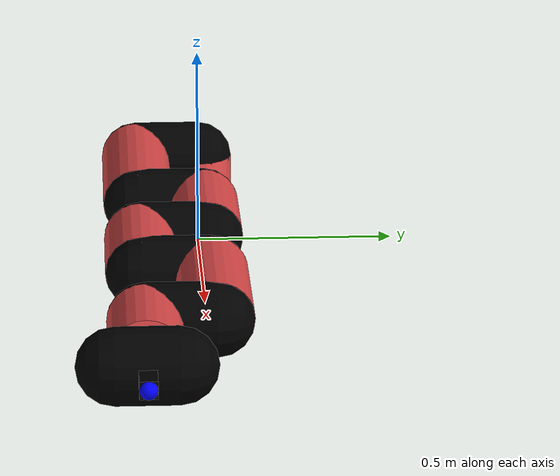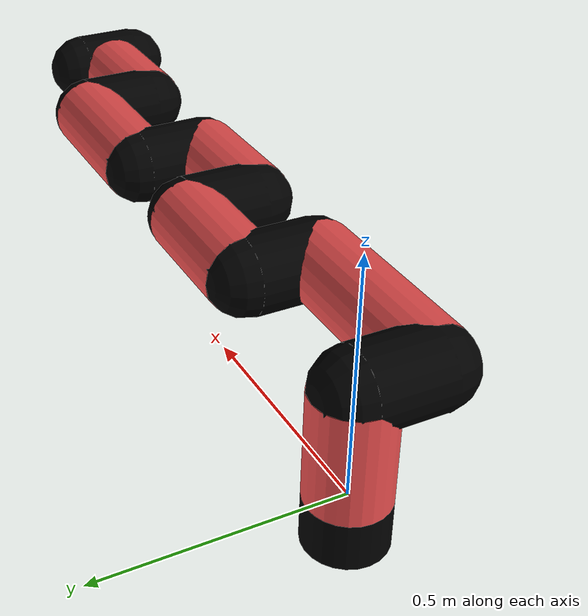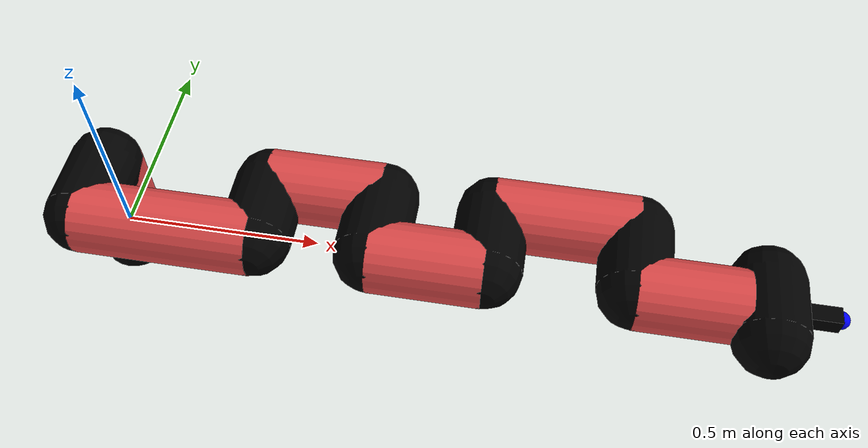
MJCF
<mujoco model="manipulator">
		<compiler angle="degree" coordinate="local" inertiafromgeom="auto" meshdir="meshes/"/>
		<option gravity="0 0 0" integrator="RK4" iterations="30" timestep="0.01"/>

		<default>
		<joint armature="1" limited="true" stiffness="10" damping="15" frictionloss="5.0"/>
		<geom conaffinity="1" condim="3" contype="1" friction=".5 .1 .1" margin="0.002"/>
		<motor ctrllimited="true"/>
		<position ctrllimited="true"/>
		</default>

		<asset>
		<texture builtin="gradient" height="100" rgb1="1.0 1.0 1.0" rgb2="1.0 1.0 1.0" type="skybox" width="100"/>
		<texture builtin="flat" height="32" name="arm_tex" rgb1="0.9 0.3 0.3" type="2d" width="32"/>
		<texture builtin="flat" height="32" name="gripper_tex" rgb1="0.0 0.0 0.0" type="cube" width="32"/>

		<material name="arm_mat" shininess="0.1" specular="0.1" texture="arm_tex"/>
		<material name="gripper_mat" shininess="1" specular="1" texture="gripper_tex"/>
		</asset>

		<worldbody>
		<light cutoff="45" diffuse=".8 .8 .8" dir="0 0.16 -1" directional="false" name="light" pos="0 -2.0 8.0" specular="0.3 0.3 0.3"/>

		<body name="base_link" pos="0 0 -0.1">
		<geom fromto="0 0 0 0 0 0.1" material="arm_mat" name="base_link" rgba="0.0 0.0 0.0 1" size="0.085" type="cylinder"/>
		</body>

		<body name="l1" pos="0 0 0">
<geom fromto="0 0 0 0 0 0.23" material="arm_mat" name="l1" rgba="0.9 0.3 0.3 1" size="0.085" type="cylinder"/>
<geom fromto="0 0 0.23 0 -0.16 0.23" material="arm_mat" name="l1_ex" rgba="0.0 0.0 0.0 1" size="0.085" type="capsule"/>
<joint axis="0 0 1" name="j1" pos="0 0 0" range="-90 90" damping="35.87" frictionloss="11.71"/>

<body name="l2" pos="0 -0.16 0.23">
<geom fromto="0 0 0 0.41 0 0" material="arm_mat" name="l2" rgba="0.9 0.3 0.3 1" size="0.085" type="cylinder"/>
<geom fromto="0.41 0 0 0.41 0.16 0" material="arm_mat" name="l2_ex" rgba="0.0 0.0 0.0 1" size="0.085" type="capsule"/>
<joint axis="0.0 1.0 0.0" name="j2" pos="0 0 0" range="-90 60" damping="24.75" frictionloss="9.93"/>

<body name="l3" pos="0.41 0.16 0">
<geom fromto="0 0 0 0.27 0 0" material="arm_mat" name="l3" rgba="0.9 0.3 0.3 1" size="0.085" type="cylinder"/>
<geom fromto="0.27 0 0 0.27 -0.16 0" material="arm_mat" name="l3_ex" rgba="0.0 0.0 0.0 1" size="0.085" type="capsule"/>
<joint axis="0.0 1.0 0.0" name="j3" pos="0 0 0" range="-30 60" damping="25.79" frictionloss="11.35"/>

<body name="l4" pos="0.27 -0.16 0">
<geom fromto="0 0 0 0.26 0 0" material="arm_mat" name="l4" rgba="0.9 0.3 0.3 1" size="0.085" type="cylinder"/>
<geom fromto="0.26 0 0 0.26 0.16 0" material="arm_mat" name="l4_ex" rgba="0.0 0.0 0.0 1" size="0.085" type="capsule"/>
<joint axis="0.0 1.0 0.0" name="j4" pos="0 0 0" range="-30 60" damping="36.72" frictionloss="10.52"/>

<body name="l5" pos="0.26 0.16 0">
<geom fromto="0 0 0 0.33 0 0" material="arm_mat" name="l5" rgba="0.9 0.3 0.3 1" size="0.085" type="cylinder"/>
<geom fromto="0.33 0 0 0.33 -0.16 0" material="arm_mat" name="l5_ex" rgba="0.0 0.0 0.0 1" size="0.085" type="capsule"/>
<joint axis="0.0 1.0 0.0" name="j5" pos="0 0 0" range="-30 60" damping="29.45" frictionloss="9.85"/>

<body name="l6" pos="0.33 -0.16 0">
<geom fromto="0 0 0 0.24 0 0" material="arm_mat" name="l6" rgba="0.9 0.3 0.3 1" size="0.085" type="cylinder"/>
<joint axis="0.0 1.0 0.0" name="j6" pos="0 0 0" range="-30 60" damping="36.63" frictionloss="9.22"/>

<body name="gripper" pos="0.24 0 0">
<geom fromto="0.05 -0.07 0 0.05 0.07 0" material="gripper_mat" name="gripper" rgba="0.0 0.0 0.0 1" size="0.085" type="capsule"/><joint axis="1 0 0" name="j7" pos="0 0 0" range="-90 90" damping="15" frictionloss="5.0"/><body name="finger" pos="0.1 0 0">
<geom fromto="0 0.0 0 0.1 0.0 0" material="gripper_mat" name="finger" rgba="0.0 0.0 0.0 1" size="0.020 0.06 0.06" type="box"/>
</body>
<site name="current" pos="0.2 0. 0.0" rgba="0. 0. 1.0 1" size="0.02" type="sphere"/>
</body>
</body>
</body>
</body>
</body>
</body>
</body>
</worldbody>
<actuator>
<motor ctrllimited="true" ctrlrange="-1.0 1.0" joint="j1" gear="85.17"/>
<motor ctrllimited="true" ctrlrange="-1.0 1.0" joint="j2" gear="66.87"/>
<motor ctrllimited="true" ctrlrange="-1.0 1.0" joint="j3" gear="86.73"/>
<motor ctrllimited="true" ctrlrange="-1.0 1.0" joint="j4" gear="91.73"/>
<motor ctrllimited="true" ctrlrange="-1.0 1.0" joint="j5" gear="77.09"/>
<motor ctrllimited="true" ctrlrange="-1.0 1.0" joint="j6" gear="62.22"/>
<motor ctrllimited="true" ctrlrange="-1.0 1.0" joint="j7" gear="80"/>
</actuator>
</mujoco>
